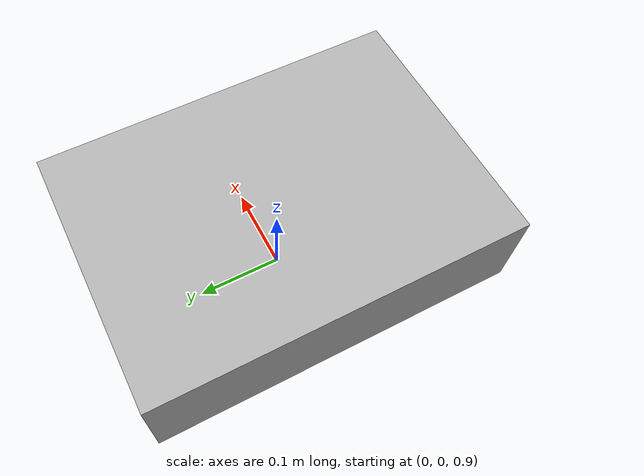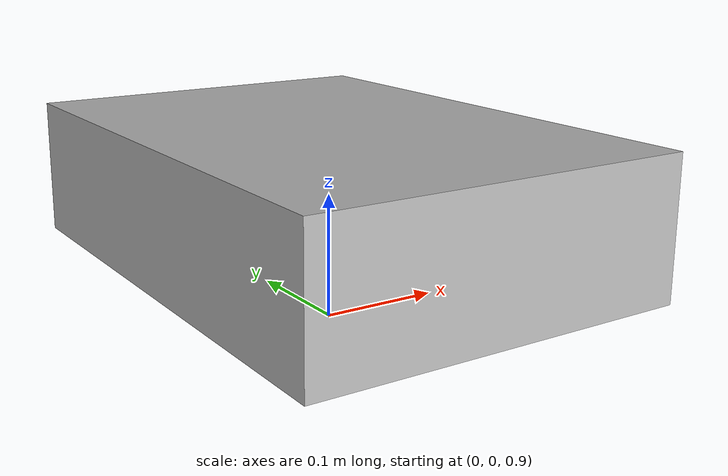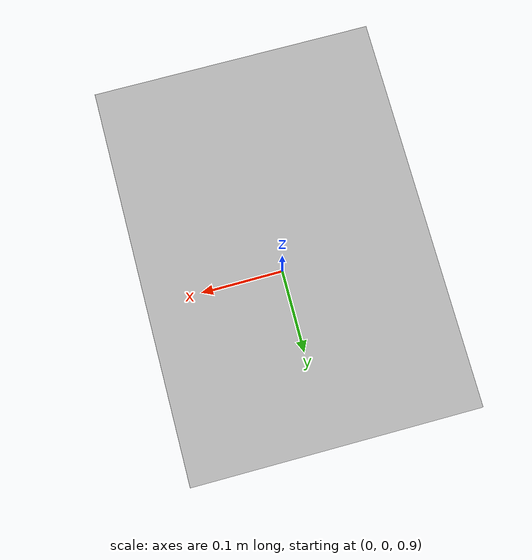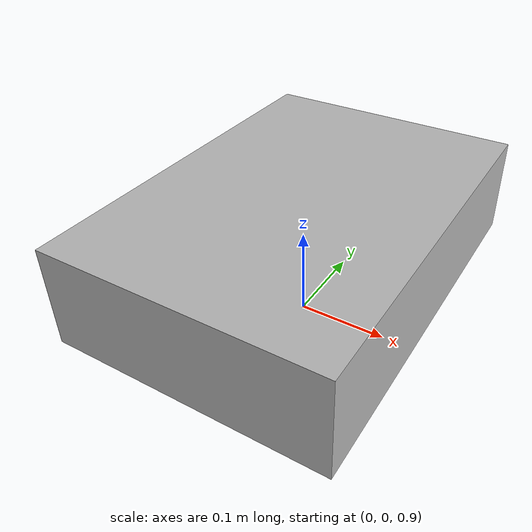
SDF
<?xml version="1.0" ?>
<sdf version="1.6">
  <world name="default">

    <physics name="1ms" type="ode">
      <max_step_size>0.001</max_step_size>
      <real_time_factor>0</real_time_factor>
    </physics>
    <plugin
      filename="gz-sim-physics-system"
      name="gz::sim::systems::Physics">
    </plugin>

    <light type="directional" name="sun">
      <cast_shadows>true</cast_shadows>
      <pose>0 0 10 0 0 0</pose>
      <diffuse>1 1 1 1</diffuse>
      <specular>0.5 0.5 0.5 1</specular>
      <attenuation>
        <range>1000</range>
        <constant>0.9</constant>
        <linear>0.01</linear>
        <quadratic>0.001</quadratic>
      </attenuation>
      <direction>-0.5 0.1 -0.9</direction>
    </light>

    <model name="ground_plane">
      <static>true</static>
      <link name="link">
        <collision name="collision">
          <geometry>
            <plane>
              <normal>0 0 1</normal>
            </plane>
          </geometry>
        </collision>
        <visual name="visual">
          <geometry>
            <plane>
              <normal>0 0 1</normal>
              <size>100 100</size>
            </plane>
          </geometry>
          <material>
            <ambient>0.8 0.8 0.8 1</ambient>
            <diffuse>0.8 0.8 0.8 1</diffuse>
            <specular>0.8 0.8 0.8 1</specular>
          </material>
        </visual>
      </link>
    </model>

    <model name="test_body">
      <pose>0 0 1 0 0 0</pose>
      <link name="base_link">
        <inertial>
          <mass>1.5</mass>
          <inertia>
            <ixx>0.0347563</ixx>
            <ixy>0</ixy>
            <ixz>0</ixz>
            <iyy>0.07</iyy>
            <iyz>0</iyz>
            <izz>0.0977</izz>
          </inertia>
        </inertial>
        <collision name="base_link_inertia_collision">
          <geometry>
            <box>
              <size>0.30 0.42 0.11</size>
            </box>
          </geometry>
        </collision>
        <visual name="base_link_inertia_visual">
          <geometry>
            <box>
              <size>0.30 0.42 0.11</size>
            </box>
          </geometry>
        </visual>
      </link>
      <plugin
        filename="gz-sim-velocity-control-system"
        name="gz::sim::systems::VelocityControl">
        <initial_linear>0 0 0</initial_linear>
        <initial_angular>0 3.1415 0</initial_angular>
      </plugin>
      <plugin
        filename="gz-sim-odometry-publisher-system"
        name="gz::sim::systems::OdometryPublisher">
        <dimensions>3</dimensions>
      </plugin>
    </model>

  </world>
</sdf>
